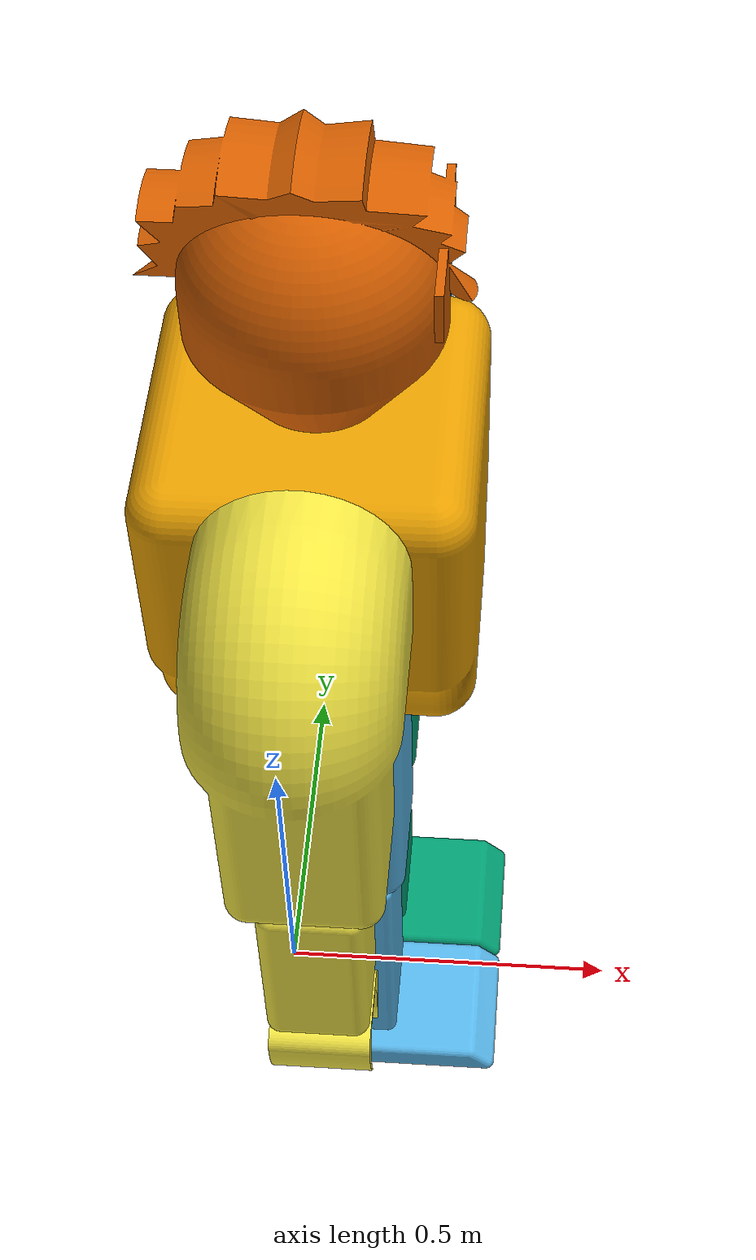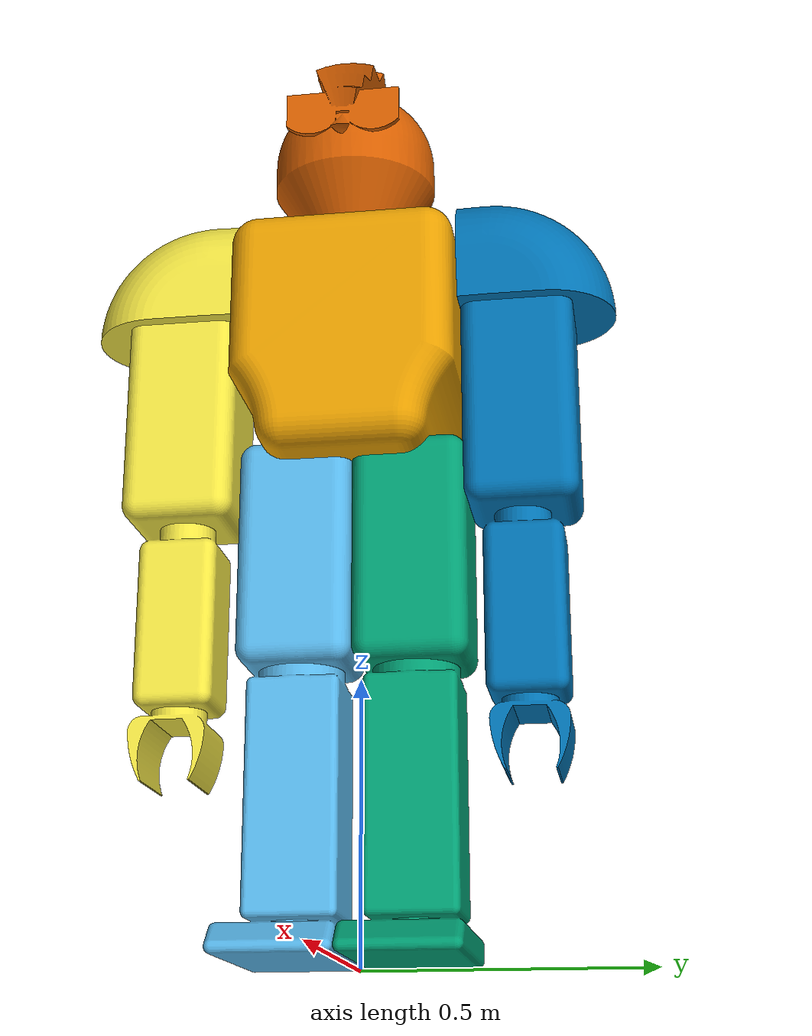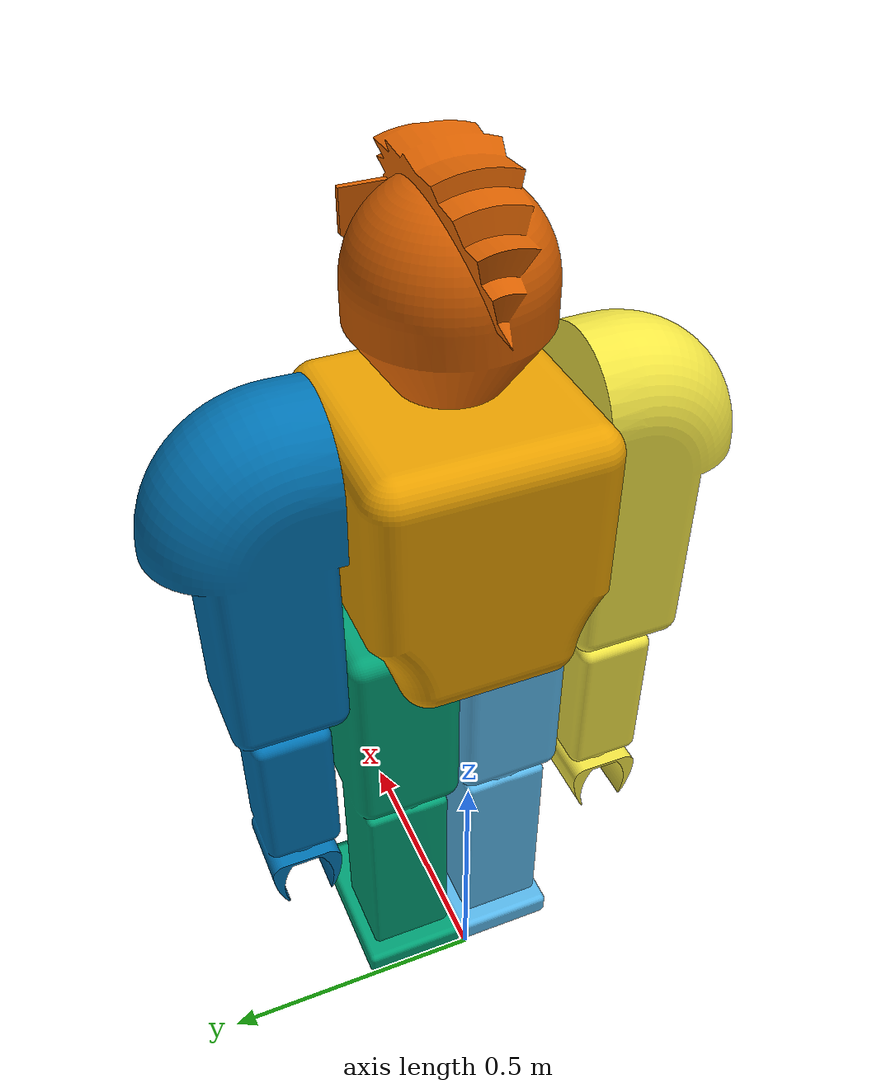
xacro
<?xml version="1.0"?>
<robot name="myrobot" xmlns:xacro="http://ros.org/wiki/xacro">

  <xacro:macro name="default_inertial" params="mass">
    <inertial>
      <mass value="${mass}" />
      <inertia ixx="1e-3" ixy="0.0" ixz="0.0" iyy="1e-3" iyz="0.0" izz="1e-3" />
    </inertial>
  </xacro:macro>

  <link name="base_link">
    <visual>
      <origin rpy="0 0 1.5708" xyz="-0.11 -0.2 0.85"/>
      <geometry>
        <mesh filename="package://project_ars/meshes/BodySat.dae"/>
      </geometry>
    </visual>
     <collision>
      <geometry>
        <mesh filename="package://project_ars/meshes/BodySat.dae"/>
      </geometry>
      <origin rpy="0 0 1.5708" xyz="-0.11 -0.2 0.85"/>
    </collision>
    <xacro:default_inertial mass="5"/>
  </link>

  <xacro:macro name="leg" params="prefix reflect">
    <joint name="base_to_${prefix}_leg" type="revolute">
      <axis xyz="0 0.5 0"/>
      <limit effort="1000.0" lower="0" upper="0.35" velocity="0.1"/>
      <parent link="base_link"/>
      <child link="${prefix}_leg"/>
      <origin rpy="0 0 0" xyz="0.1 ${reflect*0.1} 0.9"/>
    </joint>
   <link name="${prefix}_leg">
    <visual>
      <origin rpy="0 0 1.5708" xyz="-0.1 -0.09 -0.9"/>
      <geometry>
        <mesh filename="package://project_ars/meshes/LegSat.dae"/>
      </geometry>
    </visual>
    <collision>
      <geometry>
        <mesh filename="package://project_ars/meshes/LegSat.dae"/>
      </geometry>
      <origin rpy="0 0 1.5708" xyz="-0.1 -0.09 -0.9"/>
    </collision>
      <xacro:default_inertial mass="20"/>
    </link>
    </xacro:macro>

  <xacro:leg prefix="right" reflect="-1" />
  <xacro:leg prefix="left" reflect="1" />

  <xacro:macro name="hand" params="prefix reflect">
    <joint name="base_to_${prefix}_hand" type="revolute">
      <axis xyz="0 0.5 0"/>
      <limit effort="1000.0" lower="-0.35" upper="0" velocity="0.1"/>
      <parent link="base_link"/>
      <child link="${prefix}_hand"/>
      <origin rpy="0 0 ${reflect*3.1415}" xyz="0.1 ${reflect*0.15} 1.2"/>
    </joint>
   <link name="${prefix}_hand">
    <visual>
      <origin rpy="0 0 ${reflect*1.5708}" xyz="${reflect*-0.13} ${reflect*-0.33} -0.9"/>
      <geometry>
        <mesh filename="package://project_ars/meshes/HandSat.dae"/>
      </geometry>
    </visual>
    <collision>
      <geometry>
        <mesh filename="package://project_ars/meshes/HandSat.dae"/>
      </geometry>
      <origin rpy="0 0 ${reflect*1.5708}" xyz="${reflect*-0.13} ${reflect*-0.33} -0.9"/>
    </collision>
      <xacro:default_inertial mass="8"/>
    </link>
    </xacro:macro>

  <xacro:hand prefix="right" reflect="-1" />
  <xacro:hand prefix="left" reflect="1" />

  <link name="head">
    <visual>
      <origin rpy="0 0 1.5708" xyz="-0.2 -0.15 0"/>
      <geometry>
        <mesh filename="package://project_ars/meshes/HeadSat.dae"/>
      </geometry>
    </visual>
    <collision>
      <geometry>
        <mesh filename="package://project_ars/meshes/HeadSat.dae"/>
      </geometry>
      <origin rpy="0 0 1.5708" xyz="-0.2 -0.15 0"/>
    </collision>
      <xacro:default_inertial mass="2"/>
  </link>

  <joint name="base_link_to_head" type="fixed">
    <axis xyz="0 0 0.5"/>
    <limit effort="100.0" lower="-0.35" upper="0.35" velocity="0.1"/>
    <parent link="base_link"/>
    <child link="head"/>
    <origin rpy="0 0 0" xyz="0.1 0 1.32"/>
  </joint>

</robot>
